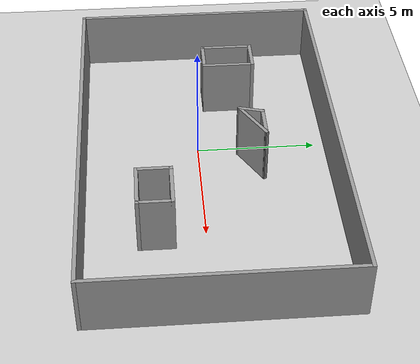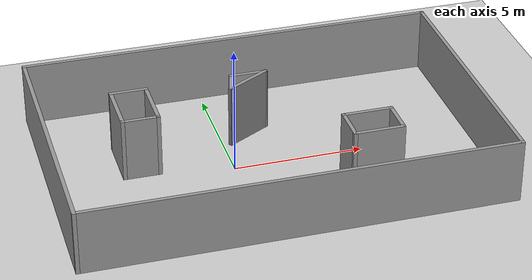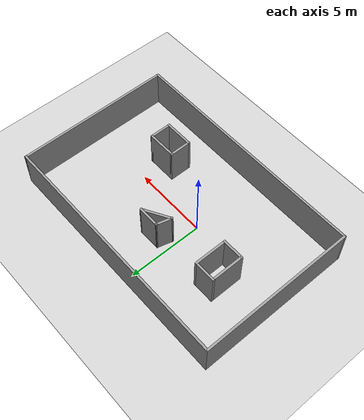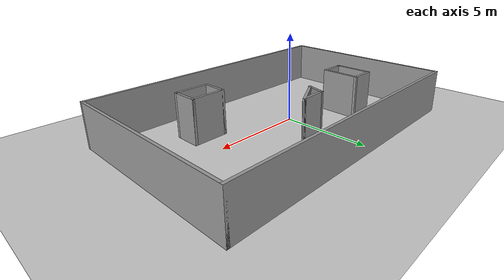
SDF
<sdf version="1.7">
 <world name="default">
  <light name="sun" type="directional">
   <pose>0 0 10 0 -0 0</pose>
   <diffuse>0.8 0.8 0.8 1</diffuse>
   <specular>0.2 0.2 0.2 1</specular>
   <attenuation>
    <range>1000</range>
    <constant>0.9</constant>
    <linear>0.01</linear>
    <quadratic>0.001</quadratic>
   </attenuation>
   <direction>-0.5 0.1 -0.9</direction>
   <spot><inner_angle>0</inner_angle><outer_angle>0</outer_angle><falloff>0</falloff></spot>
  </light>
  <model name="ground_plane">
   <static>1</static>
   <link name="link">
    <collision name="collision">
     <geometry><plane><normal>0 0 1</normal><size>100 100</size></plane></geometry>
     <surface><friction><ode><mu>100</mu><mu2>50</mu2></ode></friction></surface>
    </collision>
    <visual name="visual">
     <cast_shadows>0</cast_shadows>
     <geometry><plane><normal>0 0 1</normal><size>100 100</size></plane></geometry>
     <material>
      <script><uri>file://media/materials/scripts/gazebo.material</uri><name>Gazebo/Grey</name></script>
     </material>
    </visual>
   </link>
  </model>
  <gravity>0 0 -9.8</gravity>
  <magnetic_field>6e-06 2.3e-05 -4.2e-05</magnetic_field>
  <atmosphere type="adiabatic"/>
  <physics type="ode">
   <max_step_size>0.001</max_step_size>
   <real_time_factor>1</real_time_factor>
   <real_time_update_rate>1000</real_time_update_rate>
  </physics>
  <scene><ambient>0.4 0.4 0.4 1</ambient><background>0.7 0.7 0.7 1</background><shadows>1</shadows></scene>
  <audio><device>default</device></audio>
  <spherical_coordinates>
   <surface_model>EARTH_WGS84</surface_model>
   <latitude_deg>0</latitude_deg>
   <longitude_deg>0</longitude_deg>
   <elevation>0</elevation>
   <heading_deg>0</heading_deg>
  </spherical_coordinates>
  <model name="mecung2">
   <pose>1.24022 0.330365 0 0 -0 0</pose>
   <link name="Wall_20">
    <collision name="Wall_20_Collision">
     <geometry><box><size>2.25 0.15 2.5</size></box></geometry>
     <pose>0 0 1.25 0 -0 0</pose>
    </collision>
    <visual name="Wall_20_Visual">
     <pose>0 0 1.25 0 -0 0</pose>
     <geometry><box><size>2.25 0.15 2.5</size></box></geometry>
     <material>
      <script><uri>file://media/materials/scripts/gazebo.material</uri><name>Gazebo/Grey</name></script>
      <ambient>1 1 1 1</ambient>
     </material>
     <meta><layer>0</layer></meta>
    </visual>
    <pose>-5.37061 1.18891 0 0 -0 -1.5708</pose>
   </link>
   <link name="Wall_21">
    <collision name="Wall_21_Collision">
     <geometry><box><size>1.5 0.15 2.5</size></box></geometry>
     <pose>0 0 1.25 0 -0 0</pose>
    </collision>
    <visual name="Wall_21_Visual">
     <pose>0 0 1.25 0 -0 0</pose>
     <geometry><box><size>1.5 0.15 2.5</size></box></geometry>
     <material>
      <script><uri>file://media/materials/scripts/gazebo.material</uri><name>Gazebo/Grey</name></script>
      <ambient>1 1 1 1</ambient>
     </material>
     <meta><layer>0</layer></meta>
    </visual>
    <pose>-4.69561 0.138911 0 0 -0 0</pose>
   </link>
   <link name="Wall_22">
    <collision name="Wall_22_Collision">
     <geometry><box><size>2.25 0.15 2.5</size></box></geometry>
     <pose>0 0 1.25 0 -0 0</pose>
    </collision>
    <visual name="Wall_22_Visual">
     <pose>0 0 1.25 0 -0 0</pose>
     <geometry><box><size>2.25 0.15 2.5</size></box></geometry>
     <material>
      <script><uri>file://media/materials/scripts/gazebo.material</uri><name>Gazebo/Grey</name></script>
      <ambient>1 1 1 1</ambient>
     </material>
     <meta><layer>0</layer></meta>
    </visual>
    <pose>-4.02061 1.18891 0 0 -0 1.5708</pose>
   </link>
   <link name="Wall_23">
    <collision name="Wall_23_Collision">
     <geometry><box><size>1.5 0.15 2.5</size></box></geometry>
     <pose>0 0 1.25 0 -0 0</pose>
    </collision>
    <visual name="Wall_23_Visual">
     <pose>0 0 1.25 0 -0 0</pose>
     <geometry><box><size>1.5 0.15 2.5</size></box></geometry>
     <material>
      <script><uri>file://media/materials/scripts/gazebo.material</uri><name>Gazebo/Grey</name></script>
      <ambient>1 1 1 1</ambient>
     </material>
     <meta><layer>0</layer></meta>
    </visual>
    <pose>-4.69561 2.23891 0 0 -0 3.14159</pose>
   </link>
   <link name="Wall_28">
    <collision name="Wall_28_Collision">
     <geometry><box><size>0.16 0.15 2.5</size></box></geometry>
     <pose>0 0 1.25 0 -0 0</pose>
    </collision>
    <visual name="Wall_28_Visual">
     <pose>0 0 1.25 0 -0 0</pose>
     <geometry><box><size>0.16 0.15 2.5</size></box></geometry>
     <material>
      <script><uri>file://media/materials/scripts/gazebo.material</uri><name>Gazebo/Grey</name></script>
      <ambient>1 1 1 1</ambient>
     </material>
     <meta><layer>0</layer></meta>
    </visual>
    <pose>-0.660722 2.30658 0 0 -0 0</pose>
   </link>
   <link name="Wall_30">
    <collision name="Wall_30_Collision">
     <geometry><box><size>1.5 0.15 2.5</size></box></geometry>
     <pose>0 0 1.25 0 -0 0</pose>
    </collision>
    <visual name="Wall_30_Visual">
     <pose>0 0 1.25 0 -0 0</pose>
     <geometry><box><size>1.5 0.15 2.5</size></box></geometry>
     <material>
      <script><uri>file://media/materials/scripts/gazebo.material</uri><name>Gazebo/Grey</name></script>
      <ambient>1 1 1 1</ambient>
     </material>
     <meta><layer>0</layer></meta>
    </visual>
    <pose>0.009278 2.30658 0 0 -0 0</pose>
   </link>
   <link name="Wall_31">
    <collision name="Wall_31_Collision">
     <geometry><box><size>2 0.15 2.5</size></box></geometry>
     <pose>0 0 1.25 0 -0 0</pose>
    </collision>
    <visual name="Wall_31_Visual">
     <pose>0 0 1.25 0 -0 0</pose>
     <geometry><box><size>2 0.15 2.5</size></box></geometry>
     <material>
      <script><uri>file://media/materials/scripts/gazebo.material</uri><name>Gazebo/Grey</name></script>
      <ambient>1 1 1 1</ambient>
     </material>
     <meta><layer>0</layer></meta>
    </visual>
    <pose>-0.116796 1.84408 0 0 -0 -2.61799</pose>
   </link>
   <link name="Wall_33">
    <collision name="Wall_33_Collision">
     <geometry><box><size>1.10875 0.15 2.5</size></box></geometry>
     <pose>0 0 1.25 0 -0 0</pose>
    </collision>
    <visual name="Wall_33_Visual">
     <pose>0 0 1.25 0 -0 0</pose>
     <geometry><box><size>1.10875 0.15 2.5</size></box></geometry>
     <material>
      <script><uri>file://media/materials/scripts/gazebo.material</uri><name>Gazebo/Grey</name></script>
      <ambient>1 1 1 1</ambient>
     </material>
     <meta><layer>0</layer></meta>
    </visual>
    <pose>-0.791796 1.84408 0 0 -0 1.30467</pose>
   </link>
   <link name="Wall_4">
    <collision name="Wall_4_Collision">
     <geometry><box><size>16.5 0.15 2.5</size></box></geometry>
     <pose>0 0 1.25 0 -0 0</pose>
    </collision>
    <visual name="Wall_4_Visual">
     <pose>0 0 1.25 0 -0 0</pose>
     <geometry><box><size>16.5 0.15 2.5</size></box></geometry>
     <material>
      <script><uri>file://media/materials/scripts/gazebo.material</uri><name>Gazebo/Grey</name></script>
      <ambient>1 1 1 1</ambient>
     </material>
     <meta><layer>0</layer></meta>
    </visual>
    <pose>0 5.175 0 0 -0 0</pose>
   </link>
   <link name="Wall_44">
    <collision name="Wall_44_Collision">
     <geometry><box><size>2 0.15 2.5</size></box></geometry>
     <pose>0 0 1.25 0 -0 0</pose>
    </collision>
    <visual name="Wall_44_Visual">
     <pose>0 0 1.25 0 -0 0</pose>
     <geometry><box><size>2 0.15 2.5</size></box></geometry>
     <material>
      <script><uri>file://media/materials/scripts/gazebo.material</uri><name>Gazebo/Grey</name></script>
      <ambient>1 1 1 1</ambient>
     </material>
     <meta><layer>0</layer></meta>
    </visual>
    <pose>3.50858 -2.96429 0 0 -0 3.14159</pose>
   </link>
   <link name="Wall_45">
    <collision name="Wall_45_Collision">
     <geometry><box><size>1.5 0.15 2.5</size></box></geometry>
     <pose>0 0 1.25 0 -0 0</pose>
    </collision>
    <visual name="Wall_45_Visual">
     <pose>0 0 1.25 0 -0 0</pose>
     <geometry><box><size>1.5 0.15 2.5</size></box></geometry>
     <material>
      <script><uri>file://media/materials/scripts/gazebo.material</uri><name>Gazebo/Grey</name></script>
      <ambient>1 1 1 1</ambient>
     </material>
     <meta><layer>0</layer></meta>
    </visual>
    <pose>2.58358 -2.28929 0 0 -0 1.5708</pose>
   </link>
   <link name="Wall_46">
    <collision name="Wall_46_Collision">
     <geometry><box><size>2 0.15 2.5</size></box></geometry>
     <pose>0 0 1.25 0 -0 0</pose>
    </collision>
    <visual name="Wall_46_Visual">
     <pose>0 0 1.25 0 -0 0</pose>
     <geometry><box><size>2 0.15 2.5</size></box></geometry>
     <material>
      <script><uri>file://media/materials/scripts/gazebo.material</uri><name>Gazebo/Grey</name></script>
      <ambient>1 1 1 1</ambient>
     </material>
     <meta><layer>0</layer></meta>
    </visual>
    <pose>3.50858 -1.61429 0 0 -0 0</pose>
   </link>
   <link name="Wall_47">
    <collision name="Wall_47_Collision">
     <geometry><box><size>1.5 0.15 2.5</size></box></geometry>
     <pose>0 0 1.25 0 -0 0</pose>
    </collision>
    <visual name="Wall_47_Visual">
     <pose>0 0 1.25 0 -0 0</pose>
     <geometry><box><size>1.5 0.15 2.5</size></box></geometry>
     <material>
      <script><uri>file://media/materials/scripts/gazebo.material</uri><name>Gazebo/Grey</name></script>
      <ambient>1 1 1 1</ambient>
     </material>
     <meta><layer>0</layer></meta>
    </visual>
    <pose>4.43358 -2.28929 0 0 -0 -1.5708</pose>
   </link>
   <link name="Wall_6">
    <collision name="Wall_6_Collision">
     <geometry><box><size>10.5 0.15 2.5</size></box></geometry>
     <pose>0 0 1.25 0 -0 0</pose>
    </collision>
    <visual name="Wall_6_Visual">
     <pose>0 0 1.25 0 -0 0</pose>
     <geometry><box><size>10.5 0.15 2.5</size></box></geometry>
     <material>
      <script><uri>file://media/materials/scripts/gazebo.material</uri><name>Gazebo/Grey</name></script>
      <ambient>1 1 1 1</ambient>
     </material>
     <meta><layer>0</layer></meta>
    </visual>
    <pose>8.175 0 0 0 -0 -1.5708</pose>
   </link>
   <link name="Wall_7">
    <collision name="Wall_7_Collision">
     <geometry><box><size>16.5 0.15 2.5</size></box></geometry>
     <pose>0 0 1.25 0 -0 0</pose>
    </collision>
    <visual name="Wall_7_Visual">
     <pose>0 0 1.25 0 -0 0</pose>
     <geometry><box><size>16.5 0.15 2.5</size></box></geometry>
     <material>
      <script><uri>file://media/materials/scripts/gazebo.material</uri><name>Gazebo/Grey</name></script>
      <ambient>1 1 1 1</ambient>
     </material>
     <meta><layer>0</layer></meta>
    </visual>
    <pose>0 -5.175 0 0 -0 3.14159</pose>
   </link>
   <link name="Wall_8">
    <collision name="Wall_8_Collision">
     <geometry><box><size>10.5 0.15 2.5</size></box></geometry>
     <pose>0 0 1.25 0 -0 0</pose>
    </collision>
    <visual name="Wall_8_Visual">
     <pose>0 0 1.25 0 -0 0</pose>
     <geometry><box><size>10.5 0.15 2.5</size></box></geometry>
     <material>
      <script><uri>file://media/materials/scripts/gazebo.material</uri><name>Gazebo/Grey</name></script>
      <ambient>1 1 1 1</ambient>
     </material>
     <meta><layer>0</layer></meta>
    </visual>
    <pose>-8.175 0 0 0 -0 1.5708</pose>
   </link>
   <static>1</static>
  </model>
 </world>
</sdf>
